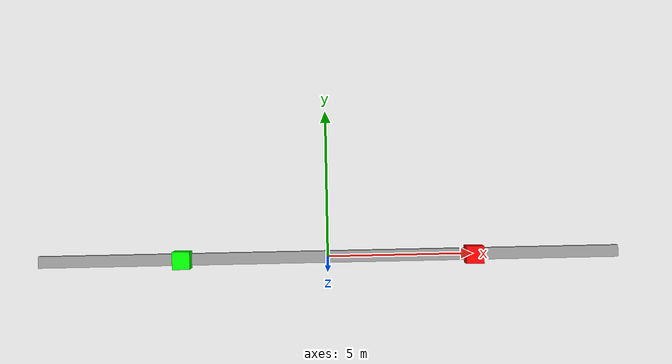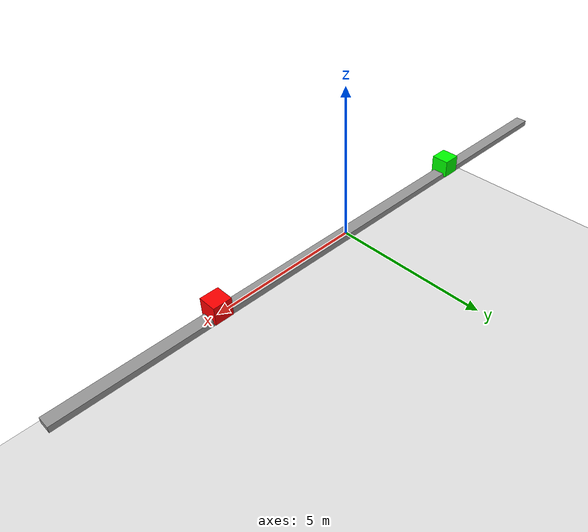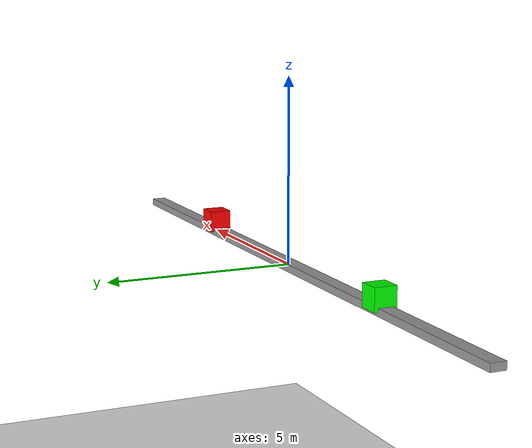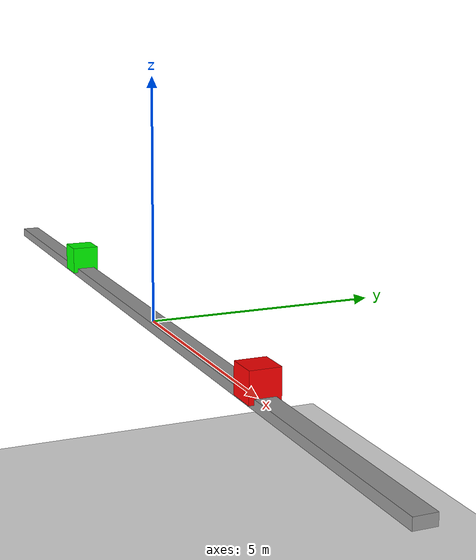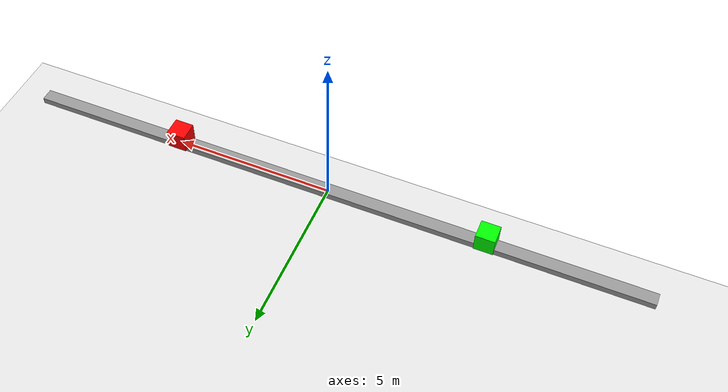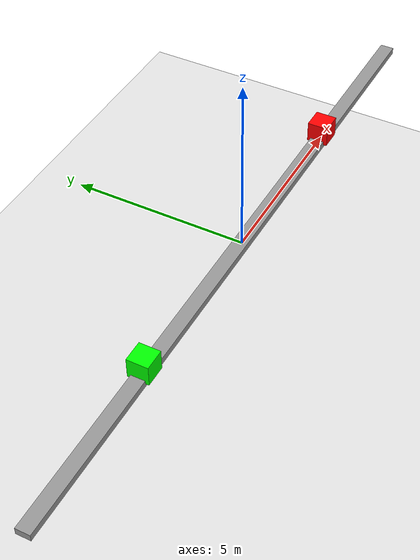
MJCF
<mujoco>
    <option gravity="0 0 -9.81"/>
    <worldbody>
      <!-- Ground -->
      <body name="ground" pos="0 0 -10">
        <geom type="plane" size="30 30 0.1" rgba="0.9 0.9 0.9 1"/>
      </body>
      <!-- Track -->
      <body name="track" pos="0 0 0">
        <geom type="box" size="10 0.2 0.1" density="0.1" rgba="0.6 0.6 0.6 1"/>
      </body>
      <!-- Light Block -->
      <body name="light_block" pos="-5 0 0.3">
        <geom type="box" size="0.3 0.3 0.3" density="0.5" rgba="0 1 0 1"/>
        <joint name="light_joint" type="slide" axis="1 0 0"/>
      </body>
      <!-- Heavy Block -->
      <body name="heavy_block" pos="5 0 0.3">
        <geom type="box" size="0.3 0.3 0.3" density="5.0" rgba="1 0 0 1"/>
        <joint name="heavy_joint" type="slide" axis="1 0 0"/>
      </body>
    </worldbody>
  </mujoco>
